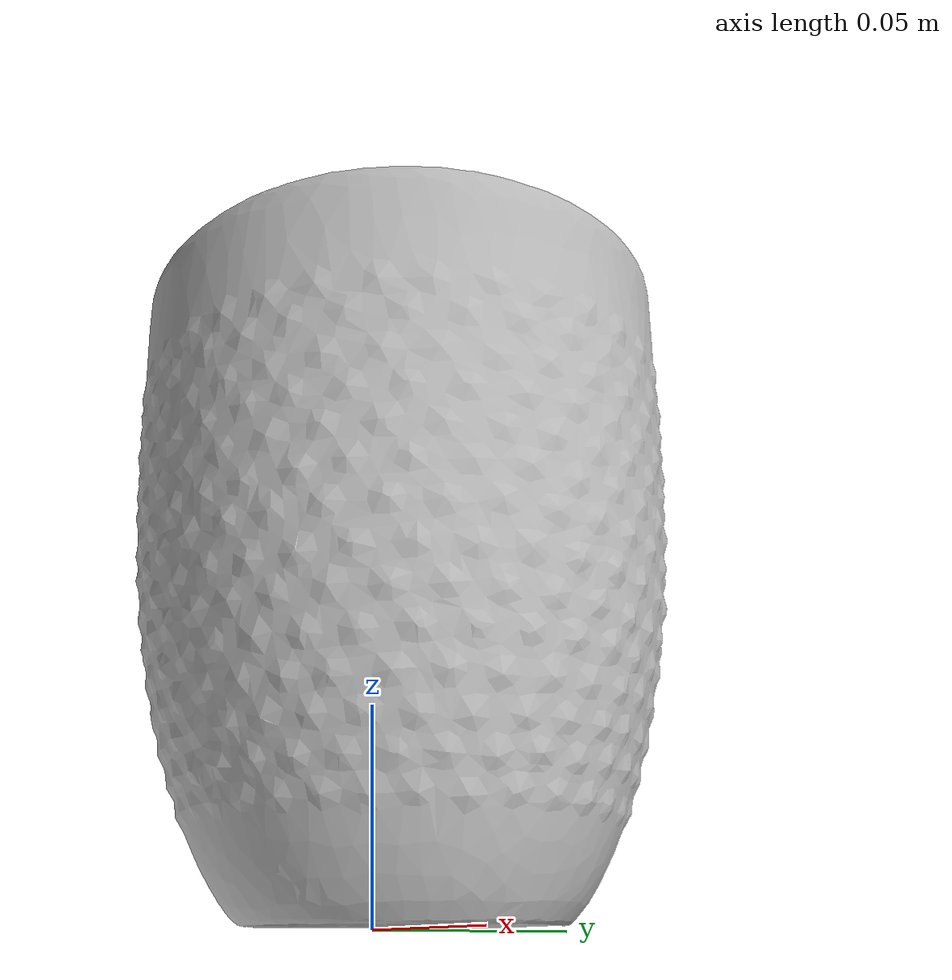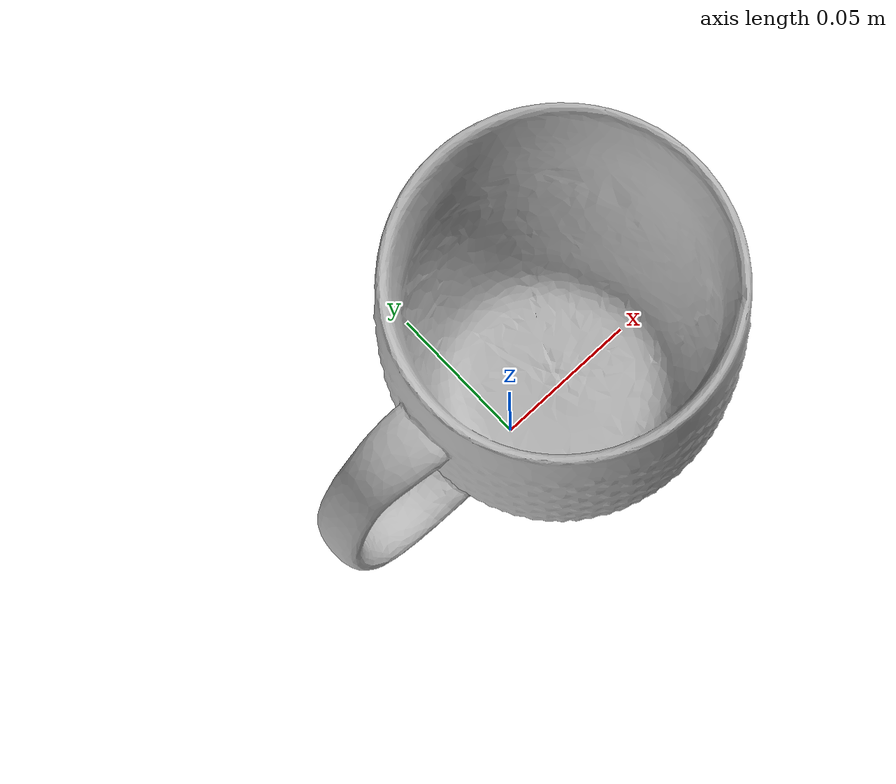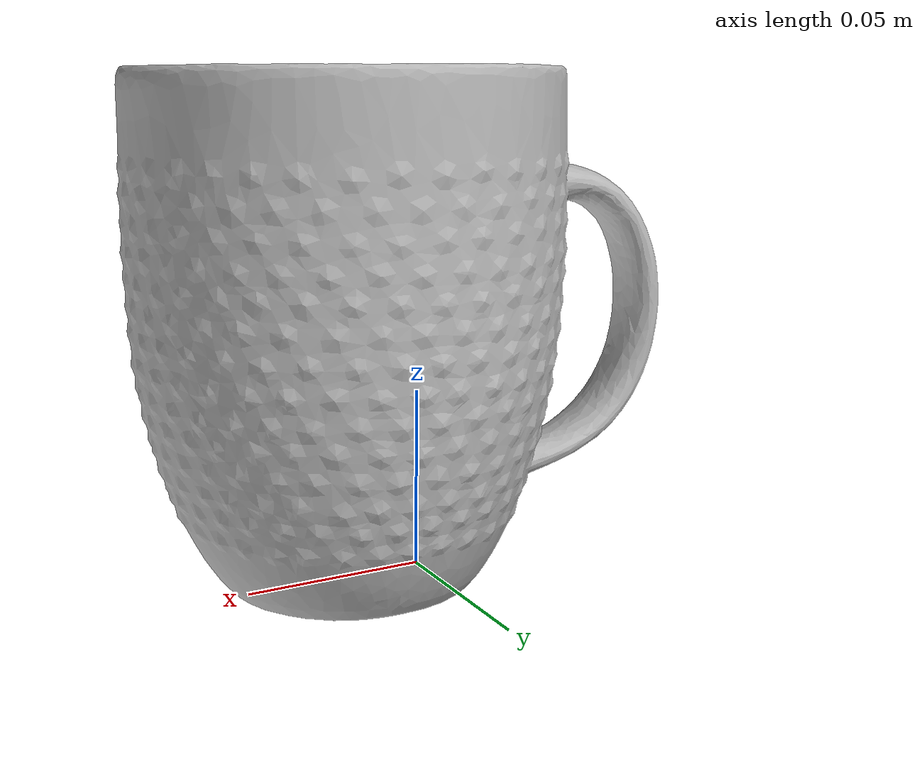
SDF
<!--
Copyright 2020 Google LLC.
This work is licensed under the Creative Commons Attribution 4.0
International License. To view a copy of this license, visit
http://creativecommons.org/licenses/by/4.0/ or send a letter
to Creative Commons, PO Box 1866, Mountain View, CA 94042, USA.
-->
<?xml version="1.0" ?>
<sdf version="1.6">
  <model name="Threshold_Porcelain_Coffee_Mug_All_Over_Bead_White">
    <link name="link_0">
      <visual name="visual">
        <geometry>
          <mesh>
            <uri>meshes/model.obj</uri>
            <scale>1.2 1.2 1.2</scale> <!-- debug whf: Scale factor to adjust the size of the mug -->
          </mesh>
        </geometry>
      </visual>
      <collision name="collision_0">
        <geometry>
          <mesh>
            <uri>meshes/model.obj</uri>
            <scale>1.2 1.2 1.2</scale> <!-- debug whf: Scale factor to adjust the size of the mug -->
          </mesh>
        </geometry>
      </collision>
    </link>
  </model>
</sdf>
